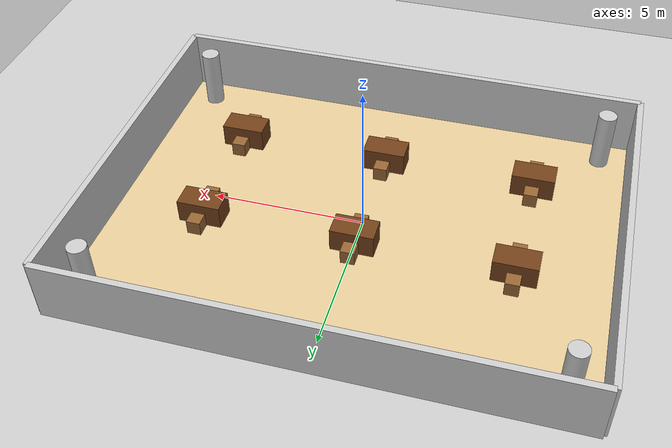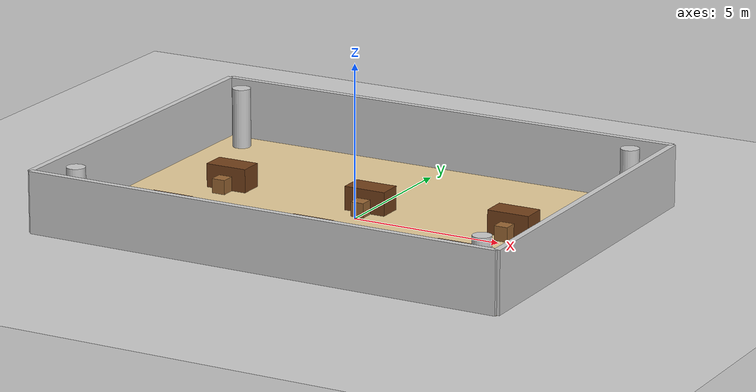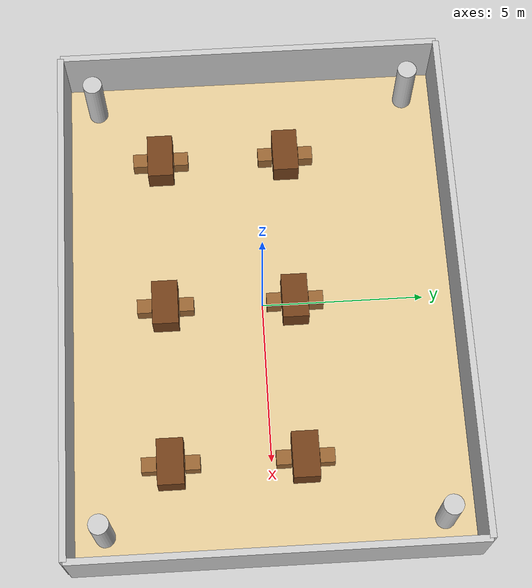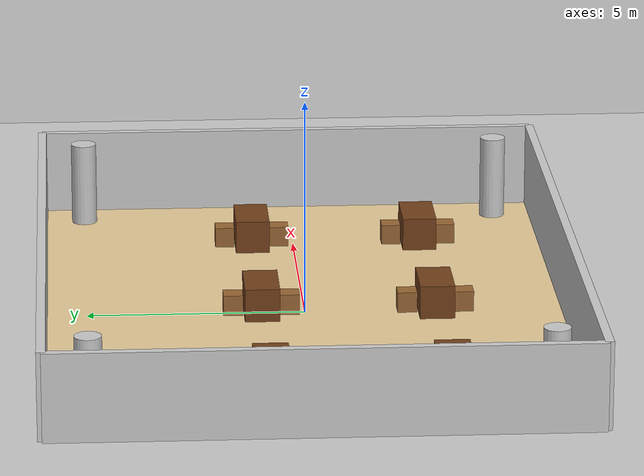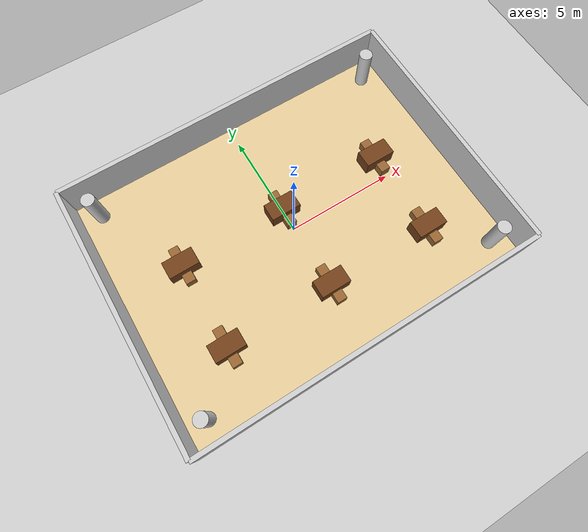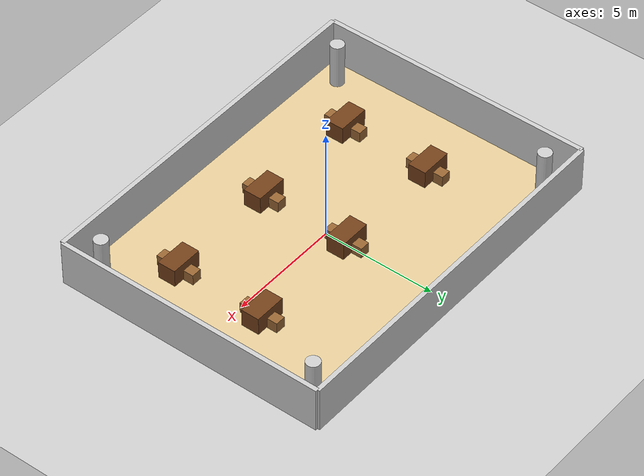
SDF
<?xml version="1.0" ?>
<sdf version="1.6">
<world name="restaurant">

  <include><uri>model://sun</uri></include>
  <include><uri>model://ground_plane</uri></include>

  <physics type="ode">
    <real_time_update_rate>1000</real_time_update_rate>
    <max_step_size>0.001</max_step_size>
  </physics>

  <!-- FLOOR -->
  <model name="floor"><static>true</static><pose>0 0 0 0 0 0</pose>
    <link name="link">
      <collision name="c"><geometry><box><size>16 12 0.05</size></box></geometry></collision>
      <visual name="v"><geometry><box><size>16 12 0.05</size></box></geometry>
        <material><ambient>0.9 0.8 0.6 1</ambient></material></visual>
    </link>
  </model>

  <!-- WALLS -->
  <model name="wall_N"><static>true</static><pose>0 6 1 0 0 0</pose>
    <link name="link"><collision name="c"><geometry><box><size>16 0.2 2</size></box></geometry></collision>
    <visual name="v"><geometry><box><size>16 0.2 2</size></box></geometry>
      <material><ambient>0.8 0.8 0.8 1</ambient></material></visual></link></model>

  <model name="wall_S"><static>true</static><pose>0 -6 1 0 0 0</pose>
    <link name="link"><collision name="c"><geometry><box><size>16 0.2 2</size></box></geometry></collision>
    <visual name="v"><geometry><box><size>16 0.2 2</size></box></geometry>
      <material><ambient>0.8 0.8 0.8 1</ambient></material></visual></link></model>

  <model name="wall_E"><static>true</static><pose>8 0 1 0 0 0</pose>
    <link name="link"><collision name="c"><geometry><box><size>0.2 12 2</size></box></geometry></collision>
    <visual name="v"><geometry><box><size>0.2 12 2</size></box></geometry>
      <material><ambient>0.8 0.8 0.8 1</ambient></material></visual></link></model>

  <model name="wall_W"><static>true</static><pose>-8 0 1 0 0 0</pose>
    <link name="link"><collision name="c"><geometry><box><size>0.2 12 2</size></box></geometry></collision>
    <visual name="v"><geometry><box><size>0.2 12 2</size></box></geometry>
      <material><ambient>0.8 0.8 0.8 1</ambient></material></visual></link></model>

  <!-- 6 DINING TABLES — 2 rows of 3 -->
  <!-- Front row y=1.0 -->
  <model name="table_1"><static>true</static><pose>-5.0 1.0 0.4 0 0 0</pose>
    <link name="link">
      <collision name="c"><geometry><box><size>1.4 0.8 0.8</size></box></geometry></collision>
      <visual name="v"><geometry><box><size>1.4 0.8 0.8</size></box></geometry>
        <material><ambient>0.45 0.25 0.10 1</ambient></material></visual>
    </link>
  </model>

  <model name="table_2"><static>true</static><pose>0.0 1.0 0.4 0 0 0</pose>
    <link name="link">
      <collision name="c"><geometry><box><size>1.4 0.8 0.8</size></box></geometry></collision>
      <visual name="v"><geometry><box><size>1.4 0.8 0.8</size></box></geometry>
        <material><ambient>0.45 0.25 0.10 1</ambient></material></visual>
    </link>
  </model>

  <model name="table_3"><static>true</static><pose>5.0 1.0 0.4 0 0 0</pose>
    <link name="link">
      <collision name="c"><geometry><box><size>1.4 0.8 0.8</size></box></geometry></collision>
      <visual name="v"><geometry><box><size>1.4 0.8 0.8</size></box></geometry>
        <material><ambient>0.45 0.25 0.10 1</ambient></material></visual>
    </link>
  </model>

  <!-- Back row y=-3.0 -->
  <model name="table_4"><static>true</static><pose>-5.0 -3.0 0.4 0 0 0</pose>
    <link name="link">
      <collision name="c"><geometry><box><size>1.4 0.8 0.8</size></box></geometry></collision>
      <visual name="v"><geometry><box><size>1.4 0.8 0.8</size></box></geometry>
        <material><ambient>0.45 0.25 0.10 1</ambient></material></visual>
    </link>
  </model>

  <model name="table_5"><static>true</static><pose>0.0 -3.0 0.4 0 0 0</pose>
    <link name="link">
      <collision name="c"><geometry><box><size>1.4 0.8 0.8</size></box></geometry></collision>
      <visual name="v"><geometry><box><size>1.4 0.8 0.8</size></box></geometry>
        <material><ambient>0.45 0.25 0.10 1</ambient></material></visual>
    </link>
  </model>

  <model name="table_6"><static>true</static><pose>5.0 -3.0 0.4 0 0 0</pose>
    <link name="link">
      <collision name="c"><geometry><box><size>1.4 0.8 0.8</size></box></geometry></collision>
      <visual name="v"><geometry><box><size>1.4 0.8 0.8</size></box></geometry>
        <material><ambient>0.45 0.25 0.10 1</ambient></material></visual>
    </link>
  </model>

  <!-- CHAIRS — 2 per table (north and south side only, no east/west blocking aisles) -->
  <!-- Table 1 chairs -->
  <model name="ch1a"><static>true</static><pose>-5.0 1.65 0.25 0 0 0</pose>
    <link name="link"><collision name="c"><geometry><box><size>0.45 0.45 0.5</size></box></geometry></collision>
    <visual name="v"><geometry><box><size>0.45 0.45 0.5</size></box></geometry>
      <material><ambient>0.6 0.4 0.2 1</ambient></material></visual></link></model>
  <model name="ch1b"><static>true</static><pose>-5.0 0.35 0.25 0 0 0</pose>
    <link name="link"><collision name="c"><geometry><box><size>0.45 0.45 0.5</size></box></geometry></collision>
    <visual name="v"><geometry><box><size>0.45 0.45 0.5</size></box></geometry>
      <material><ambient>0.6 0.4 0.2 1</ambient></material></visual></link></model>

  <!-- Table 2 chairs -->
  <model name="ch2a"><static>true</static><pose>0.0 1.65 0.25 0 0 0</pose>
    <link name="link"><collision name="c"><geometry><box><size>0.45 0.45 0.5</size></box></geometry></collision>
    <visual name="v"><geometry><box><size>0.45 0.45 0.5</size></box></geometry>
      <material><ambient>0.6 0.4 0.2 1</ambient></material></visual></link></model>
  <model name="ch2b"><static>true</static><pose>0.0 0.35 0.25 0 0 0</pose>
    <link name="link"><collision name="c"><geometry><box><size>0.45 0.45 0.5</size></box></geometry></collision>
    <visual name="v"><geometry><box><size>0.45 0.45 0.5</size></box></geometry>
      <material><ambient>0.6 0.4 0.2 1</ambient></material></visual></link></model>

  <!-- Table 3 chairs -->
  <model name="ch3a"><static>true</static><pose>5.0 1.65 0.25 0 0 0</pose>
    <link name="link"><collision name="c"><geometry><box><size>0.45 0.45 0.5</size></box></geometry></collision>
    <visual name="v"><geometry><box><size>0.45 0.45 0.5</size></box></geometry>
      <material><ambient>0.6 0.4 0.2 1</ambient></material></visual></link></model>
  <model name="ch3b"><static>true</static><pose>5.0 0.35 0.25 0 0 0</pose>
    <link name="link"><collision name="c"><geometry><box><size>0.45 0.45 0.5</size></box></geometry></collision>
    <visual name="v"><geometry><box><size>0.45 0.45 0.5</size></box></geometry>
      <material><ambient>0.6 0.4 0.2 1</ambient></material></visual></link></model>

  <!-- Table 4 chairs -->
  <model name="ch4a"><static>true</static><pose>-5.0 -2.35 0.25 0 0 0</pose>
    <link name="link"><collision name="c"><geometry><box><size>0.45 0.45 0.5</size></box></geometry></collision>
    <visual name="v"><geometry><box><size>0.45 0.45 0.5</size></box></geometry>
      <material><ambient>0.6 0.4 0.2 1</ambient></material></visual></link></model>
  <model name="ch4b"><static>true</static><pose>-5.0 -3.65 0.25 0 0 0</pose>
    <link name="link"><collision name="c"><geometry><box><size>0.45 0.45 0.5</size></box></geometry></collision>
    <visual name="v"><geometry><box><size>0.45 0.45 0.5</size></box></geometry>
      <material><ambient>0.6 0.4 0.2 1</ambient></material></visual></link></model>

  <!-- Table 5 chairs -->
  <model name="ch5a"><static>true</static><pose>0.0 -2.35 0.25 0 0 0</pose>
    <link name="link"><collision name="c"><geometry><box><size>0.45 0.45 0.5</size></box></geometry></collision>
    <visual name="v"><geometry><box><size>0.45 0.45 0.5</size></box></geometry>
      <material><ambient>0.6 0.4 0.2 1</ambient></material></visual></link></model>
  <model name="ch5b"><static>true</static><pose>0.0 -3.65 0.25 0 0 0</pose>
    <link name="link"><collision name="c"><geometry><box><size>0.45 0.45 0.5</size></box></geometry></collision>
    <visual name="v"><geometry><box><size>0.45 0.45 0.5</size></box></geometry>
      <material><ambient>0.6 0.4 0.2 1</ambient></material></visual></link></model>

  <!-- Table 6 chairs -->
  <model name="ch6a"><static>true</static><pose>5.0 -2.35 0.25 0 0 0</pose>
    <link name="link"><collision name="c"><geometry><box><size>0.45 0.45 0.5</size></box></geometry></collision>
    <visual name="v"><geometry><box><size>0.45 0.45 0.5</size></box></geometry>
      <material><ambient>0.6 0.4 0.2 1</ambient></material></visual></link></model>
  <model name="ch6b"><static>true</static><pose>5.0 -3.65 0.25 0 0 0</pose>
    <link name="link"><collision name="c"><geometry><box><size>0.45 0.45 0.5</size></box></geometry></collision>
    <visual name="v"><geometry><box><size>0.45 0.45 0.5</size></box></geometry>
      <material><ambient>0.6 0.4 0.2 1</ambient></material></visual></link></model>

  <!-- 4 CORNER PILLARS -->
  <model name="p_NW"><static>true</static><pose>-7 5 1 0 0 0</pose>
    <link name="link"><collision name="c"><geometry><cylinder><radius>0.3</radius><length>2</length></cylinder></geometry></collision>
    <visual name="v"><geometry><cylinder><radius>0.3</radius><length>2</length></cylinder></geometry>
      <material><ambient>0.8 0.8 0.8 1</ambient></material></visual></link></model>

  <model name="p_NE"><static>true</static><pose>7 5 1 0 0 0</pose>
    <link name="link"><collision name="c"><geometry><cylinder><radius>0.3</radius><length>2</length></cylinder></geometry></collision>
    <visual name="v"><geometry><cylinder><radius>0.3</radius><length>2</length></cylinder></geometry>
      <material><ambient>0.8 0.8 0.8 1</ambient></material></visual></link></model>

  <model name="p_SW"><static>true</static><pose>-7 -5 1 0 0 0</pose>
    <link name="link"><collision name="c"><geometry><cylinder><radius>0.3</radius><length>2</length></cylinder></geometry></collision>
    <visual name="v"><geometry><cylinder><radius>0.3</radius><length>2</length></cylinder></geometry>
      <material><ambient>0.8 0.8 0.8 1</ambient></material></visual></link></model>

  <model name="p_SE"><static>true</static><pose>7 -5 1 0 0 0</pose>
    <link name="link"><collision name="c"><geometry><cylinder><radius>0.3</radius><length>2</length></cylinder></geometry></collision>
    <visual name="v"><geometry><cylinder><radius>0.3</radius><length>2</length></cylinder></geometry>
      <material><ambient>0.8 0.8 0.8 1</ambient></material></visual></link></model>

</world>
</sdf>
